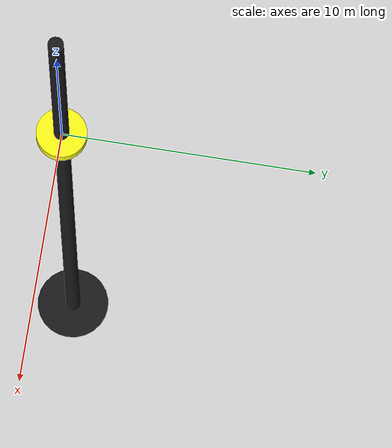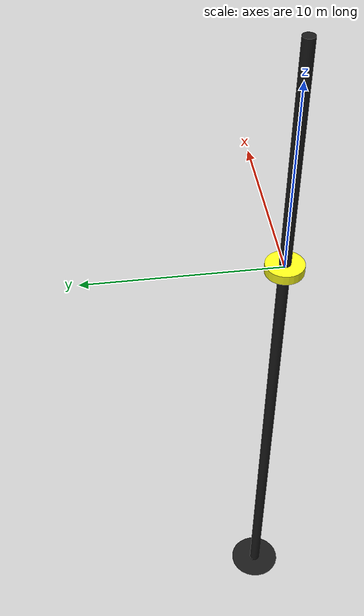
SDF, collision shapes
<?xml version="1.0"?>
<sdf version="1.6">
  <model name="rm3_wec_mini">
    <link name="base_link">
      <pose>0 0 -7 0 0 0</pose>
      <inertial>
        <pose>0 0 -14.29 0 0 0</pose>
        <mass>878300</mass>
        <inertia>
          <ixx>94419615</ixx>
          <ixy>0.0</ixy>
          <ixz>0.0</ixz>
          <iyy>94419615</iyy>
          <iyz>0.0</iyz>
          <izz>28542225</izz>
        </inertia>
      </inertial>
      <collision name="base_collision">
        <pose>0 0 -18.95 0 0 0</pose>
        <geometry>
          <cylinder>
            <radius>1.50</radius>
            <length>0.01</length>
          </cylinder>
        </geometry>
      </collision>
      <collision name="plate_collision">
        <geometry>
          <cylinder>
            <radius>0.30</radius>
            <length>38</length>
          </cylinder>
        </geometry>
      </collision>
      <visual name="mesh_visual">
        <pose>0 0 -10.2 0 0 0</pose>
        <geometry>
          <mesh>
            <uri>package://gz_waves_models/models/rm3_wec/meshes/plate.stl</uri>
            <scale>0.1 0.1 1</scale>
            </mesh>
          </geometry>
        <material>
          <ambient>0.1 0.1 0.1 1.0</ambient>
          <diffuse>0.1 0.1 0.1 1.0</diffuse>
          <specular>0.01 0.01 0.01 1.0</specular>
        </material>
      </visual>
    </link>
    <joint name="base_joint" type="revolute">
      <child>base_link</child>
      <parent>world</parent>
      <axis>
        <xyz>0 0 1</xyz>
        <limit>
          <lower>0</lower>
          <upper>0</upper>
        </limit>
        <dynamics>
          <damping>1.0</damping>
        </dynamics>
      </axis>
    </joint>
    <link name="float_link">
      <pose>0 0 0 0 0 0</pose>
      <inertial>
        <mass>727.010</mass>
        <inertia>
          <ixx>20907.301</ixx>
          <ixy>0.0</ixy>
          <ixz>0.0</ixz>
          <iyy>21306.091</iyy>
          <iyz>0.0</iyz>
          <izz>37085.481</izz>
        </inertia>
      </inertial>
      <collision name="collision">
        <geometry>
          <cylinder>
            <radius>1.0</radius>
            <length>0.5</length>
          </cylinder>
        </geometry>
      </collision>
      <visual name="visual">
        <pose>0 0 -0.0225 0 0 0</pose>
        <geometry>
          <mesh>
            <uri>package://gz_waves_models/models/rm3_wec/meshes/float.stl</uri>
            <scale>0.1 0.1 0.1</scale>
          </mesh>
        </geometry>
        <material>
          <ambient>1 1 0.1 1.0</ambient>
          <diffuse>1 1 0.1 1.0</diffuse>
          <specular>0.01 0.01 0.01 1.0</specular>
        </material>
      </visual>
    </link>
    <joint name="float_joint" type="prismatic">
      <child>float_link</child>
      <parent>base_link</parent>
      <axis>
        <xyz>0 0 1</xyz>
        <limit>
          <lower>-10</lower>
          <upper>10</upper>
        </limit>
        <dynamics>
          <damping>0.1</damping>
        </dynamics>
      </axis>
    </joint>

    <!-- plugins -->
    <plugin filename="gz-sim-joint-state-publisher-system"
        name="gz::sim::systems::JointStatePublisher">
    </plugin>
    <plugin filename="gz-sim-odometry-publisher-system"
        name="gz::sim::systems::OdometryPublisher">
      <odom_frame>odom</odom_frame>
      <robot_base_frame>base_link</robot_base_frame>
      <odom_publish_frequency>50</odom_publish_frequency>
      <odom_topic>model/rm3_wec_mini/odometry</odom_topic>
      <dimensions>3</dimensions>
    </plugin>
    <plugin filename="gz-sim-pose-publisher-system"
        name="gz::sim::systems::PosePublisher">
      <publish_link_pose>true</publish_link_pose>
      <use_pose_vector_msg>true</use_pose_vector_msg>
      <static_publisher>true</static_publisher>
      <static_update_frequency>1</static_update_frequency>
    </plugin>
    <plugin filename="gz-waves1-hydrodynamics-system"
        name="gz::sim::systems::Hydrodynamics">
      <enable>rm3_wec_mini::float_link</enable>
      <hydrodynamics>
        <damping_on>1</damping_on>
        <viscous_drag_on>1</viscous_drag_on>
        <pressure_drag_on>1</pressure_drag_on>
      </hydrodynamics>
    </plugin>
  </model>
</sdf>
